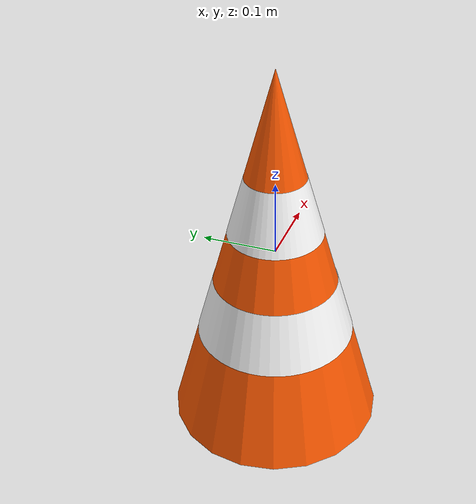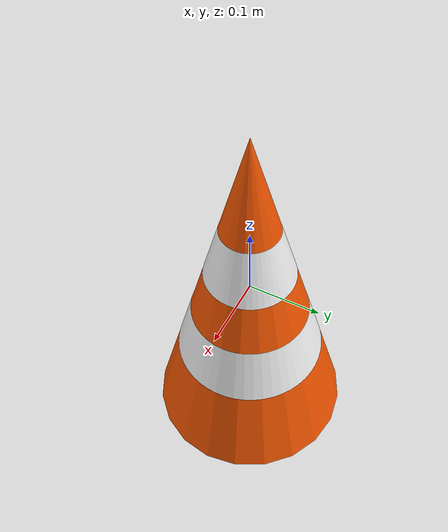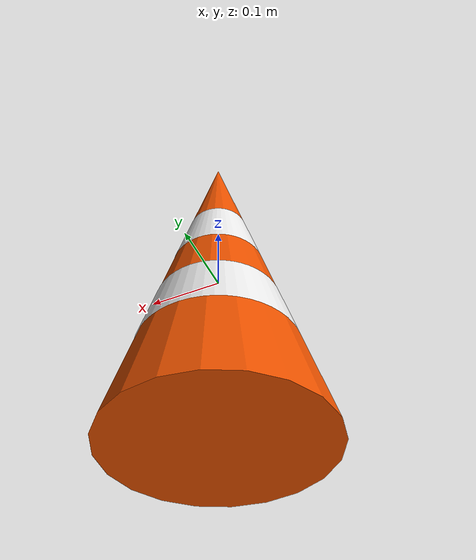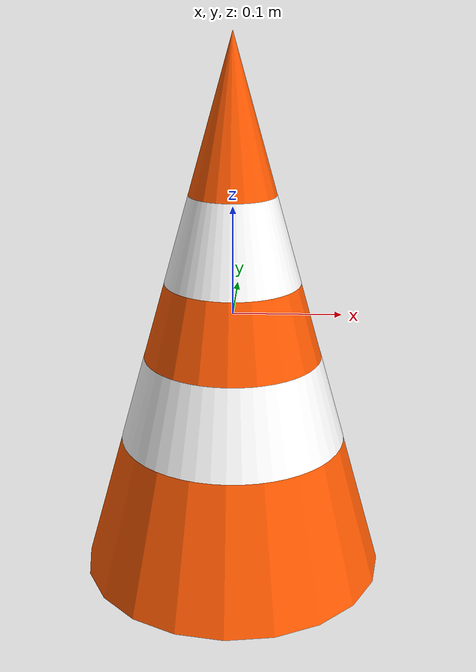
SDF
<?xml version="1.0" ?>
<sdf version="1.11">
  <model name="cone_orange">
    <static>true</static>
    <link name="link">

      <!-- ORANGE CONE BODY -->
      <visual name="visual">
        <geometry>
          <cone><radius>0.1425</radius><length>0.505</length></cone>
        </geometry>
        <material>
          <ambient>1 0.35 0 1</ambient>
          <diffuse>1 0.35 0 1</diffuse>
          <specular>0.8 0.8 0.8 1</specular>
          <emissive>0.4 0.02 0 1</emissive>
          <pbr>
            <metal>
              <roughness>0.1</roughness>
              <metalness>0.0</metalness>
            </metal>
          </pbr>
        </material>
      </visual>

      <!-- LOWER WHITE STRIPE -->
      <visual name="stripe_lower">
        <pose>0 0 -0.1212 0 0 0</pose>
        <geometry>
          <mesh><uri>meshes/stripe_lower.obj</uri></mesh>
        </geometry>
        <material>
          <ambient>1 1 1 1</ambient>
          <diffuse>1 1 1 1</diffuse>
          <specular>0.9 0.9 0.9 1</specular>
          <emissive>0.45 0.45 0.45 1</emissive>
          <pbr>
            <metal>
              <roughness>0.1</roughness>
              <metalness>0.0</metalness>
            </metal>
          </pbr>
        </material>
      </visual>

      <!-- UPPER WHITE STRIPE -->
      <visual name="stripe_upper">
        <pose>0 0 0.0303 0 0 0</pose>
        <geometry>
          <mesh><uri>meshes/stripe_upper.obj</uri></mesh>
        </geometry>
        <material>
          <ambient>1 1 1 1</ambient>
          <diffuse>1 1 1 1</diffuse>
          <specular>0.9 0.9 0.9 1</specular>
          <emissive>0.45 0.45 0.45 1</emissive>
          <pbr>
            <metal>
              <roughness>0.1</roughness>
              <metalness>0.0</metalness>
            </metal>
          </pbr>
        </material>
      </visual>

      <collision name="collision">
        <geometry>
          <cone><radius>0.1425</radius><length>0.505</length></cone>
        </geometry>
      </collision>
    </link>
  </model>
</sdf>
